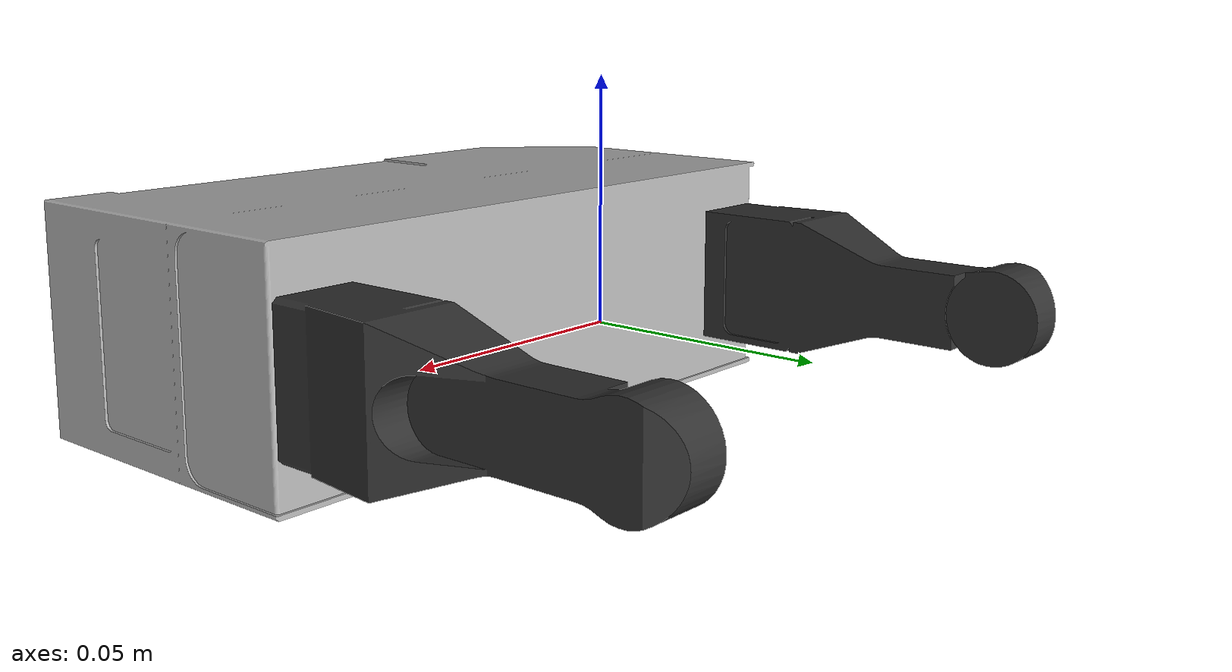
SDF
<?xml version="1.0"?>
<!-- This sdf file is based on schunk_wsg_50.sdf -->
<sdf version="1.7">
  <model name="Schunk_Gripper">
    <link name="body">
      <pose>0 -0.049133 0 0 0 0</pose>
      <inertial>
        <mass>0.988882</mass>
        <inertia>
          <ixx>0.162992</ixx>
          <ixy>0</ixy>
          <ixz>0</ixz>
          <iyy>0.162992</iyy>
          <iyz>0</iyz>
          <izz>0.164814</izz>
        </inertia>
      </inertial>
      <visual name="visual">
        <geometry>
          <mesh>
            <scale>1 1 1</scale>
            <uri>package://drake_models/wsg_50_description/meshes/wsg_body.obj</uri>
          </mesh>
        </geometry>
        <material>
          <diffuse>0.7 0.7 0.7 1</diffuse>
        </material>
      </visual>
      <collision name="collision">
        <geometry>
          <box>
            <size>0.146 0.0725 0.05</size>
          </box>
        </geometry>
      </collision>
    </link>
    <frame name="body_frame">
      <pose relative_to="body"/>
    </frame>
    <link name="left_finger">
      <pose>-0.06 0.028 0 0 3.141592 0</pose>
      <inertial>
        <mass>0.05</mass>
        <inertia>
          <ixx>0.16</ixx>
          <ixy>0</ixy>
          <ixz>0</ixz>
          <iyy>0.16</iyy>
          <iyz>0</iyz>
          <izz>0.16</izz>
        </inertia>
      </inertial>
      <visual name="visual">
        <geometry>
          <mesh>
            <scale>1 1 1</scale>
            <uri>package://drake_models/wsg_50_description/meshes/finger_without_tip.obj</uri>
          </mesh>
        </geometry>
        <material>
          <diffuse>0.2 0.2 0.2 1</diffuse>
        </material>
      </visual>
      <collision name="collision">
        <geometry>
          <box>
            <size>0.012 0.082 0.02</size>
          </box>
        </geometry>
      </collision>
    </link>
    <link name="right_finger">
      <pose>0.06 0.028 0 0 0 0</pose>
      <inertial>
        <mass>0.05</mass>
        <inertia>
          <ixx>0.16</ixx>
          <ixy>0</ixy>
          <ixz>0</ixz>
          <iyy>0.16</iyy>
          <iyz>0</iyz>
          <izz>0.16</izz>
        </inertia>
      </inertial>
      <visual name="visual">
        <geometry>
          <mesh>
            <scale>1 1 1</scale>
            <uri>package://drake_models/wsg_50_description/meshes/finger_without_tip.obj</uri>
          </mesh>
        </geometry>
        <material>
          <diffuse>0.2 0.2 0.2 1</diffuse>
        </material>
      </visual>
      <collision name="collision">
        <geometry>
          <box>
            <size>0.012 0.082 0.02</size>
          </box>
        </geometry>
      </collision>
    </link>
    <joint name="left_finger_sliding_joint" type="fixed">
      <parent>body</parent>
      <child>left_finger</child>
    </joint>
    <joint name="right_finger_sliding_joint" type="fixed">
      <parent>body</parent>
      <child>right_finger</child>
    </joint>
  </model>
</sdf>
